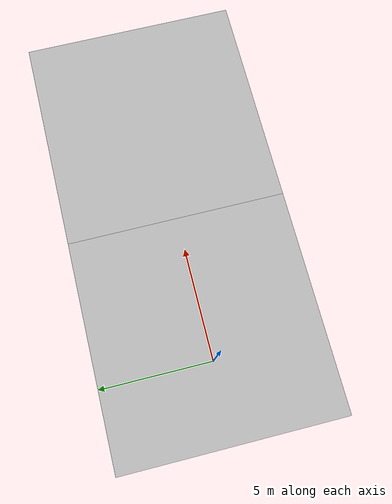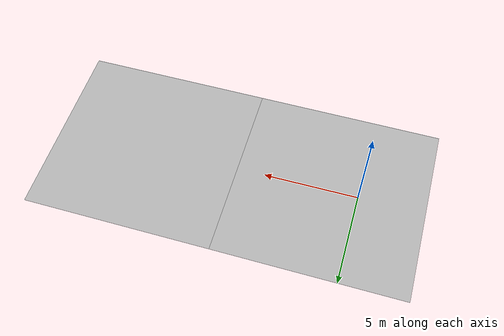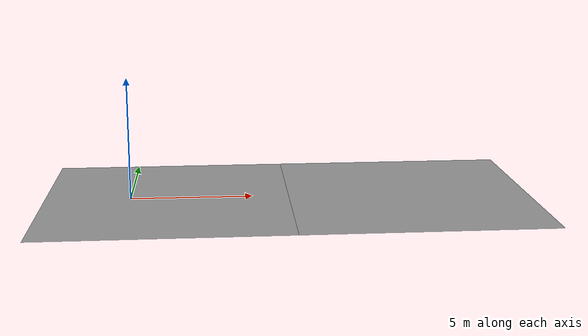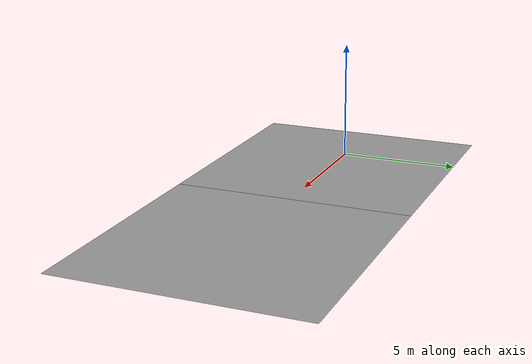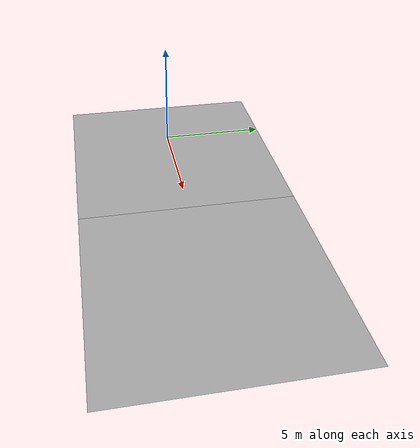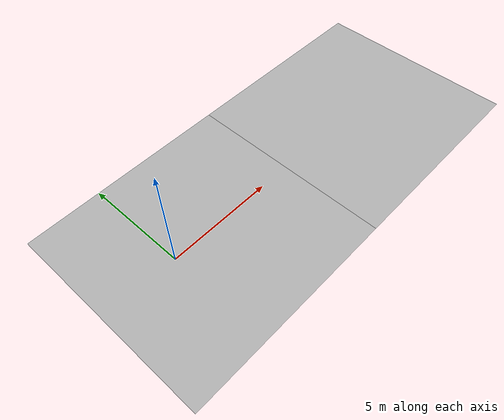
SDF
<sdf version='1.6'>
	<world name='default'>
	<gravity>0 0 -9.8</gravity>

		<model name='part1.obj'>
			<static>1</static>
			<pose frame=''>1.5 0 0 0 0 0</pose>
			<link name='link_d1'>
				<inertial>
					<mass>100</mass>
					<inertia>
						<ixx>0.166667</ixx>
						<ixy>0</ixy>
						<ixz>0</ixz>
						<iyy>0.166667</iyy>
						<iyz>0</iyz>
						<izz>0.166667</izz>
					</inertia>
				</inertial>
				<collision name='collision_1'>
					<geometry>
						<plane>
							<normal>0 0 1</normal>
							<size>10 10</size>
						</plane>
					</geometry>
				</collision>
				<visual name='visual'>
					<geometry>
						<box>
							<size>10 10 0</size>
						</box>
					</geometry>
				</visual>
			</link>
		</model>

		<model name='part2.obj'>
			<static>1</static>
			<pose frame=''>11.5 0 0 0 0 0</pose>
			<link name='link_d2'>
				<inertial>
					<mass>0</mass>
					<inertia>
						<ixx>0.166667</ixx>
						<ixy>0</ixy>
						<ixz>0</ixz>
						<iyy>0.166667</iyy>
						<iyz>0</iyz>
						<izz>0.166667</izz>
					</inertia>
				</inertial>
				<collision name='collision_2'>
					<geometry>
						<box>
							<size>10 10 0</size>
						</box>
					</geometry>
				</collision>
				<visual name='visual2'>
					<geometry>
						<box>
							<size>10 10 0.0</size>
						</box>
					</geometry>
				</visual>
			</link>
		</model>

	</world>
</sdf>
